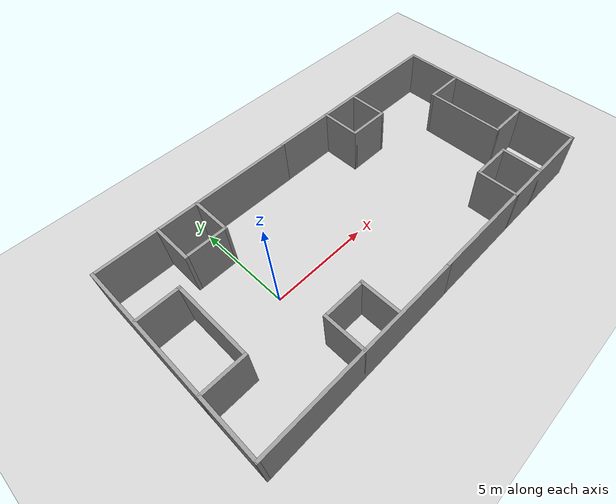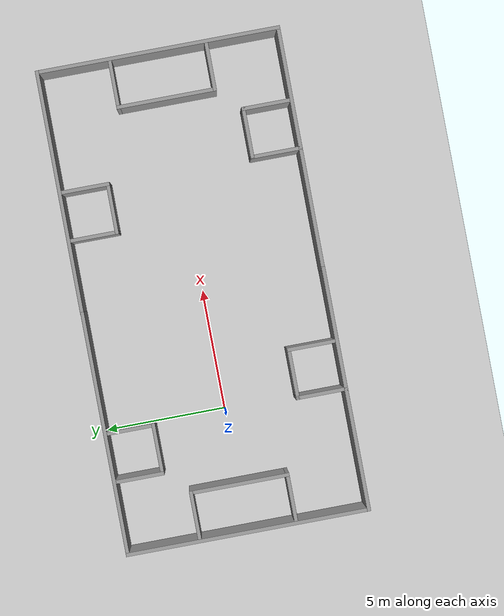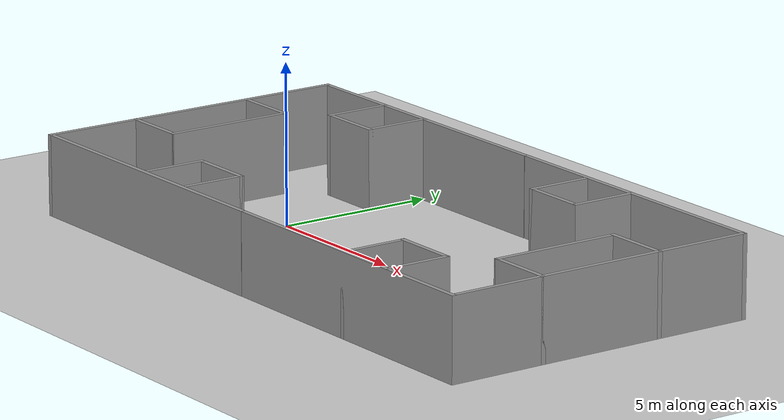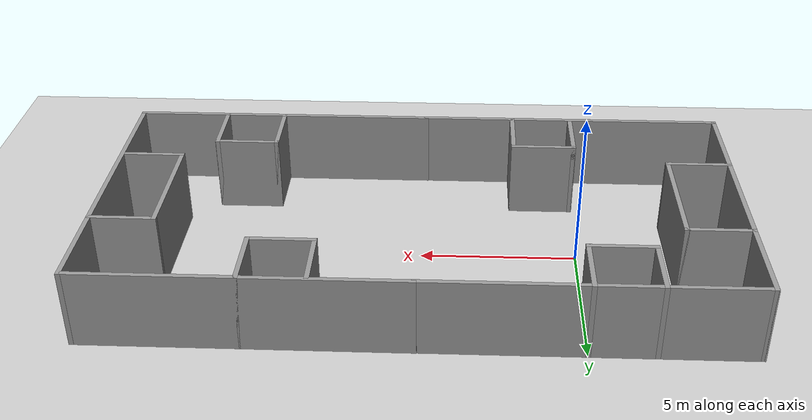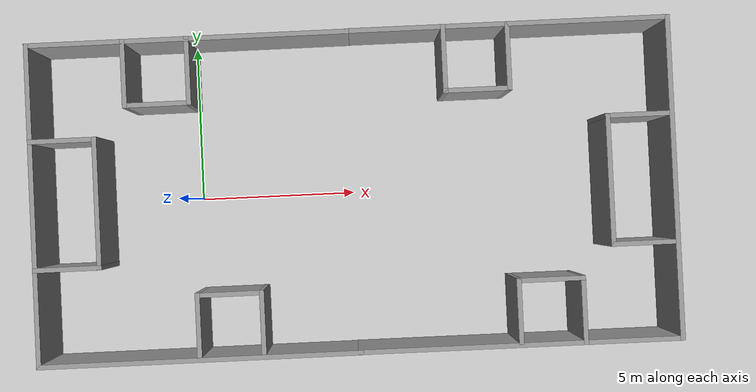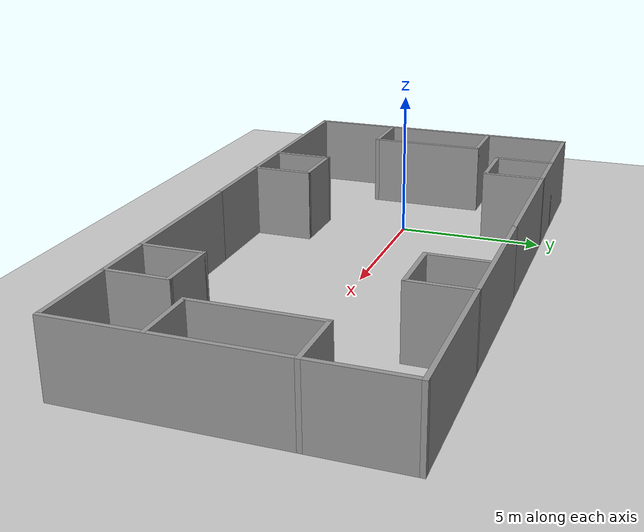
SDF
<sdf version="1.6">
 <world name="default">
  <light name="sun" type="directional">
   <pose>0 0 10 0 -0 0</pose>
   <diffuse>0.8 0.8 0.8 1</diffuse>
   <specular>0.1 0.1 0.1 1</specular>
   <attenuation>
    <range>1000</range>
    <constant>0.9</constant>
    <linear>0.01</linear>
    <quadratic>0.001</quadratic>
   </attenuation>
   <direction>-0.5 0.5 -1</direction>
  </light>
  <model name="ground_plane">
   <static>1</static>
   <link name="link">
    <collision name="collision">
     <geometry><plane><normal>0 0 1</normal><size>100 100</size></plane></geometry>
     <surface><friction><ode><mu>100</mu><mu2>50</mu2></ode></friction></surface>
    </collision>
    <visual name="visual">
     <cast_shadows>0</cast_shadows>
     <geometry><plane><normal>0 0 1</normal><size>100 100</size></plane></geometry>
     <material>
      <script><uri>file://media/materials/scripts/gazebo.material</uri><name>Gazebo/Grey</name></script>
     </material>
    </visual>
   </link>
  </model>
  <gravity>0 0 -9.8</gravity>
  <magnetic_field>6e-06 2.3e-05 -4.2e-05</magnetic_field>
  <atmosphere type="adiabatic"/>
  <physics name="default_physics" default="0" type="ode">
   <max_step_size>0.001</max_step_size>
   <real_time_factor>1</real_time_factor>
   <real_time_update_rate>1000</real_time_update_rate>
  </physics>
  <scene><ambient>0.4 0.4 0.4 1</ambient><background>0.7 0.7 0.7 1</background><shadows>1</shadows></scene>
  <spherical_coordinates>
   <surface_model>EARTH_WGS84</surface_model>
   <latitude_deg>0</latitude_deg>
   <longitude_deg>0</longitude_deg>
   <elevation>0</elevation>
   <heading_deg>0</heading_deg>
  </spherical_coordinates>
  <model name="part_u_1">
   <link name="Wall_78">
    <collision name="Wall_78_Collision">
     <geometry><box><size>10.15 0.15 2.5</size></box></geometry>
     <pose>0 0 1.25 0 -0 0</pose>
    </collision>
    <visual name="Wall_78_Visual">
     <pose>0 0 1.25 0 -0 0</pose>
     <geometry><box><size>10.15 0.15 2.5</size></box></geometry>
     <material>
      <script><uri>file://media/materials/scripts/gazebo.material</uri><name>Gazebo/Grey</name></script>
      <ambient>1 1 1 1</ambient>
     </material>
    </visual>
    <pose>0 -5 0 0 -0 3.14159</pose>
   </link>
   <link name="Wall_79">
    <collision name="Wall_79_Collision">
     <geometry><box><size>10.15 0.15 2.5</size></box></geometry>
     <pose>0 0 1.25 0 -0 0</pose>
    </collision>
    <visual name="Wall_79_Visual">
     <pose>0 0 1.25 0 -0 0</pose>
     <geometry><box><size>10.15 0.15 2.5</size></box></geometry>
     <material>
      <script><uri>file://media/materials/scripts/gazebo.material</uri><name>Gazebo/Grey</name></script>
      <ambient>1 1 1 1</ambient>
     </material>
    </visual>
    <pose>-5 0 0 0 -0 1.5708</pose>
   </link>
   <link name="Wall_80">
    <collision name="Wall_80_Collision">
     <geometry><box><size>10.15 0.15 2.5</size></box></geometry>
     <pose>0 0 1.25 0 -0 0</pose>
    </collision>
    <visual name="Wall_80_Visual">
     <pose>0 0 1.25 0 -0 0</pose>
     <geometry><box><size>10.15 0.15 2.5</size></box></geometry>
     <material>
      <script><uri>file://media/materials/scripts/gazebo.material</uri><name>Gazebo/Grey</name></script>
      <ambient>1 1 1 1</ambient>
     </material>
    </visual>
    <pose>0 5 0 0 -0 0</pose>
   </link>
   <link name="Wall_82">
    <collision name="Wall_82_Collision">
     <geometry><box><size>2.15 0.15 2.5</size></box></geometry>
     <pose>0 0 1.25 0 -0 0</pose>
    </collision>
    <visual name="Wall_82_Visual">
     <pose>0 0 1.25 0 -0 0</pose>
     <geometry><box><size>2.15 0.15 2.5</size></box></geometry>
     <material>
      <script><uri>file://media/materials/scripts/gazebo.material</uri><name>Gazebo/Grey</name></script>
      <ambient>1 1 1 1</ambient>
     </material>
    </visual>
    <pose>-4 2 0 0 -0 0</pose>
   </link>
   <link name="Wall_83">
    <collision name="Wall_83_Collision">
     <geometry><box><size>4.15 0.15 2.5</size></box></geometry>
     <pose>0 0 1.25 0 -0 0</pose>
    </collision>
    <visual name="Wall_83_Visual">
     <pose>0 0 1.25 0 -0 0</pose>
     <geometry><box><size>4.15 0.15 2.5</size></box></geometry>
     <material>
      <script><uri>file://media/materials/scripts/gazebo.material</uri><name>Gazebo/Grey</name></script>
      <ambient>1 1 1 1</ambient>
     </material>
    </visual>
    <pose>-3 0 0 0 0 -1.5708</pose>
   </link>
   <link name="Wall_84">
    <collision name="Wall_84_Collision">
     <geometry><box><size>2.15 0.15 2.5</size></box></geometry>
     <pose>0 0 1.25 0 -0 0</pose>
    </collision>
    <visual name="Wall_84_Visual">
     <pose>0 0 1.25 0 -0 0</pose>
     <geometry><box><size>2.15 0.15 2.5</size></box></geometry>
     <material>
      <script><uri>file://media/materials/scripts/gazebo.material</uri><name>Gazebo/Grey</name></script>
      <ambient>1 1 1 1</ambient>
     </material>
    </visual>
    <pose>-4 -2 0 0 -0 3.14159</pose>
   </link>
   <link name="Wall_86">
    <collision name="Wall_86_Collision">
     <geometry><box><size>2.15 0.15 2.5</size></box></geometry>
     <pose>0 0 1.25 0 -0 0</pose>
    </collision>
    <visual name="Wall_86_Visual">
     <pose>0 0 1.25 0 -0 0</pose>
     <geometry><box><size>2.15 0.15 2.5</size></box></geometry>
     <material>
      <script><uri>file://media/materials/scripts/gazebo.material</uri><name>Gazebo/Grey</name></script>
      <ambient>1 1 1 1</ambient>
     </material>
    </visual>
    <pose>-2 4 0 0 0 -1.5708</pose>
   </link>
   <link name="Wall_87">
    <collision name="Wall_87_Collision">
     <geometry><box><size>2.15 0.15 2.5</size></box></geometry>
     <pose>0 0 1.25 0 -0 0</pose>
    </collision>
    <visual name="Wall_87_Visual">
     <pose>0 0 1.25 0 -0 0</pose>
     <geometry><box><size>2.15 0.15 2.5</size></box></geometry>
     <material>
      <script><uri>file://media/materials/scripts/gazebo.material</uri><name>Gazebo/Grey</name></script>
      <ambient>1 1 1 1</ambient>
     </material>
    </visual>
    <pose>-1 3 0 0 -0 0</pose>
   </link>
   <link name="Wall_88">
    <collision name="Wall_88_Collision">
     <geometry><box><size>2.15 0.15 2.5</size></box></geometry>
     <pose>0 0 1.25 0 -0 0</pose>
    </collision>
    <visual name="Wall_88_Visual">
     <pose>0 0 1.25 0 -0 0</pose>
     <geometry><box><size>2.15 0.15 2.5</size></box></geometry>
     <material>
      <script><uri>file://media/materials/scripts/gazebo.material</uri><name>Gazebo/Grey</name></script>
      <ambient>1 1 1 1</ambient>
     </material>
    </visual>
    <pose>0 4 0 0 -0 1.5708</pose>
   </link>
   <link name="Wall_90">
    <collision name="Wall_90_Collision">
     <geometry><box><size>2.15 0.15 2.5</size></box></geometry>
     <pose>0 0 1.25 0 -0 0</pose>
    </collision>
    <visual name="Wall_90_Visual">
     <pose>0 0 1.25 0 -0 0</pose>
     <geometry><box><size>2.15 0.15 2.5</size></box></geometry>
     <material>
      <script><uri>file://media/materials/scripts/gazebo.material</uri><name>Gazebo/Grey</name></script>
      <ambient>1 1 1 1</ambient>
     </material>
    </visual>
    <pose>0 -4 0 0 -0 1.5708</pose>
   </link>
   <link name="Wall_91">
    <collision name="Wall_91_Collision">
     <geometry><box><size>2.15 0.15 2.5</size></box></geometry>
     <pose>0 0 1.25 0 -0 0</pose>
    </collision>
    <visual name="Wall_91_Visual">
     <pose>0 0 1.25 0 -0 0</pose>
     <geometry><box><size>2.15 0.15 2.5</size></box></geometry>
     <material>
      <script><uri>file://media/materials/scripts/gazebo.material</uri><name>Gazebo/Grey</name></script>
      <ambient>1 1 1 1</ambient>
     </material>
    </visual>
    <pose>1 -3 0 0 -0 0</pose>
   </link>
   <link name="Wall_92">
    <collision name="Wall_92_Collision">
     <geometry><box><size>2.15 0.15 2.5</size></box></geometry>
     <pose>0 0 1.25 0 -0 0</pose>
    </collision>
    <visual name="Wall_92_Visual">
     <pose>0 0 1.25 0 -0 0</pose>
     <geometry><box><size>2.15 0.15 2.5</size></box></geometry>
     <material>
      <script><uri>file://media/materials/scripts/gazebo.material</uri><name>Gazebo/Grey</name></script>
      <ambient>1 1 1 1</ambient>
     </material>
    </visual>
    <pose>2 -4 0 0 0 -1.5708</pose>
   </link>
   <static>1</static>
  </model>
  <model name="part_u_2">
   <pose>10 0 0 0 -0 3.14</pose>
   <link name="Wall_78">
    <collision name="Wall_78_Collision">
     <geometry><box><size>10.15 0.15 2.5</size></box></geometry>
     <pose>0 0 1.25 0 -0 0</pose>
    </collision>
    <visual name="Wall_78_Visual">
     <pose>0 0 1.25 0 -0 0</pose>
     <geometry><box><size>10.15 0.15 2.5</size></box></geometry>
     <material>
      <script><uri>file://media/materials/scripts/gazebo.material</uri><name>Gazebo/Grey</name></script>
      <ambient>1 1 1 1</ambient>
     </material>
    </visual>
    <pose>0 -5 0 0 -0 3.14159</pose>
   </link>
   <link name="Wall_79">
    <collision name="Wall_79_Collision">
     <geometry><box><size>10.15 0.15 2.5</size></box></geometry>
     <pose>0 0 1.25 0 -0 0</pose>
    </collision>
    <visual name="Wall_79_Visual">
     <pose>0 0 1.25 0 -0 0</pose>
     <geometry><box><size>10.15 0.15 2.5</size></box></geometry>
     <material>
      <script><uri>file://media/materials/scripts/gazebo.material</uri><name>Gazebo/Grey</name></script>
      <ambient>1 1 1 1</ambient>
     </material>
    </visual>
    <pose>-5 0 0 0 -0 1.5708</pose>
   </link>
   <link name="Wall_80">
    <collision name="Wall_80_Collision">
     <geometry><box><size>10.15 0.15 2.5</size></box></geometry>
     <pose>0 0 1.25 0 -0 0</pose>
    </collision>
    <visual name="Wall_80_Visual">
     <pose>0 0 1.25 0 -0 0</pose>
     <geometry><box><size>10.15 0.15 2.5</size></box></geometry>
     <material>
      <script><uri>file://media/materials/scripts/gazebo.material</uri><name>Gazebo/Grey</name></script>
      <ambient>1 1 1 1</ambient>
     </material>
    </visual>
    <pose>0 5 0 0 -0 0</pose>
   </link>
   <link name="Wall_82">
    <collision name="Wall_82_Collision">
     <geometry><box><size>2.15 0.15 2.5</size></box></geometry>
     <pose>0 0 1.25 0 -0 0</pose>
    </collision>
    <visual name="Wall_82_Visual">
     <pose>0 0 1.25 0 -0 0</pose>
     <geometry><box><size>2.15 0.15 2.5</size></box></geometry>
     <material>
      <script><uri>file://media/materials/scripts/gazebo.material</uri><name>Gazebo/Grey</name></script>
      <ambient>1 1 1 1</ambient>
     </material>
    </visual>
    <pose>-4 2 0 0 -0 0</pose>
   </link>
   <link name="Wall_83">
    <collision name="Wall_83_Collision">
     <geometry><box><size>4.15 0.15 2.5</size></box></geometry>
     <pose>0 0 1.25 0 -0 0</pose>
    </collision>
    <visual name="Wall_83_Visual">
     <pose>0 0 1.25 0 -0 0</pose>
     <geometry><box><size>4.15 0.15 2.5</size></box></geometry>
     <material>
      <script><uri>file://media/materials/scripts/gazebo.material</uri><name>Gazebo/Grey</name></script>
      <ambient>1 1 1 1</ambient>
     </material>
    </visual>
    <pose>-3 0 0 0 0 -1.5708</pose>
   </link>
   <link name="Wall_84">
    <collision name="Wall_84_Collision">
     <geometry><box><size>2.15 0.15 2.5</size></box></geometry>
     <pose>0 0 1.25 0 -0 0</pose>
    </collision>
    <visual name="Wall_84_Visual">
     <pose>0 0 1.25 0 -0 0</pose>
     <geometry><box><size>2.15 0.15 2.5</size></box></geometry>
     <material>
      <script><uri>file://media/materials/scripts/gazebo.material</uri><name>Gazebo/Grey</name></script>
      <ambient>1 1 1 1</ambient>
     </material>
    </visual>
    <pose>-4 -2 0 0 -0 3.14159</pose>
   </link>
   <link name="Wall_86">
    <collision name="Wall_86_Collision">
     <geometry><box><size>2.15 0.15 2.5</size></box></geometry>
     <pose>0 0 1.25 0 -0 0</pose>
    </collision>
    <visual name="Wall_86_Visual">
     <pose>0 0 1.25 0 -0 0</pose>
     <geometry><box><size>2.15 0.15 2.5</size></box></geometry>
     <material>
      <script><uri>file://media/materials/scripts/gazebo.material</uri><name>Gazebo/Grey</name></script>
      <ambient>1 1 1 1</ambient>
     </material>
    </visual>
    <pose>-2 4 0 0 0 -1.5708</pose>
   </link>
   <link name="Wall_87">
    <collision name="Wall_87_Collision">
     <geometry><box><size>2.15 0.15 2.5</size></box></geometry>
     <pose>0 0 1.25 0 -0 0</pose>
    </collision>
    <visual name="Wall_87_Visual">
     <pose>0 0 1.25 0 -0 0</pose>
     <geometry><box><size>2.15 0.15 2.5</size></box></geometry>
     <material>
      <script><uri>file://media/materials/scripts/gazebo.material</uri><name>Gazebo/Grey</name></script>
      <ambient>1 1 1 1</ambient>
     </material>
    </visual>
    <pose>-1 3 0 0 -0 0</pose>
   </link>
   <link name="Wall_88">
    <collision name="Wall_88_Collision">
     <geometry><box><size>2.15 0.15 2.5</size></box></geometry>
     <pose>0 0 1.25 0 -0 0</pose>
    </collision>
    <visual name="Wall_88_Visual">
     <pose>0 0 1.25 0 -0 0</pose>
     <geometry><box><size>2.15 0.15 2.5</size></box></geometry>
     <material>
      <script><uri>file://media/materials/scripts/gazebo.material</uri><name>Gazebo/Grey</name></script>
      <ambient>1 1 1 1</ambient>
     </material>
    </visual>
    <pose>0 4 0 0 -0 1.5708</pose>
   </link>
   <link name="Wall_90">
    <collision name="Wall_90_Collision">
     <geometry><box><size>2.15 0.15 2.5</size></box></geometry>
     <pose>0 0 1.25 0 -0 0</pose>
    </collision>
    <visual name="Wall_90_Visual">
     <pose>0 0 1.25 0 -0 0</pose>
     <geometry><box><size>2.15 0.15 2.5</size></box></geometry>
     <material>
      <script><uri>file://media/materials/scripts/gazebo.material</uri><name>Gazebo/Grey</name></script>
      <ambient>1 1 1 1</ambient>
     </material>
    </visual>
    <pose>0 -4 0 0 -0 1.5708</pose>
   </link>
   <link name="Wall_91">
    <collision name="Wall_91_Collision">
     <geometry><box><size>2.15 0.15 2.5</size></box></geometry>
     <pose>0 0 1.25 0 -0 0</pose>
    </collision>
    <visual name="Wall_91_Visual">
     <pose>0 0 1.25 0 -0 0</pose>
     <geometry><box><size>2.15 0.15 2.5</size></box></geometry>
     <material>
      <script><uri>file://media/materials/scripts/gazebo.material</uri><name>Gazebo/Grey</name></script>
      <ambient>1 1 1 1</ambient>
     </material>
    </visual>
    <pose>1 -3 0 0 -0 0</pose>
   </link>
   <link name="Wall_92">
    <collision name="Wall_92_Collision">
     <geometry><box><size>2.15 0.15 2.5</size></box></geometry>
     <pose>0 0 1.25 0 -0 0</pose>
    </collision>
    <visual name="Wall_92_Visual">
     <pose>0 0 1.25 0 -0 0</pose>
     <geometry><box><size>2.15 0.15 2.5</size></box></geometry>
     <material>
      <script><uri>file://media/materials/scripts/gazebo.material</uri><name>Gazebo/Grey</name></script>
      <ambient>1 1 1 1</ambient>
     </material>
    </visual>
    <pose>2 -4 0 0 0 -1.5708</pose>
   </link>
   <static>1</static>
  </model>
 </world>
</sdf>
